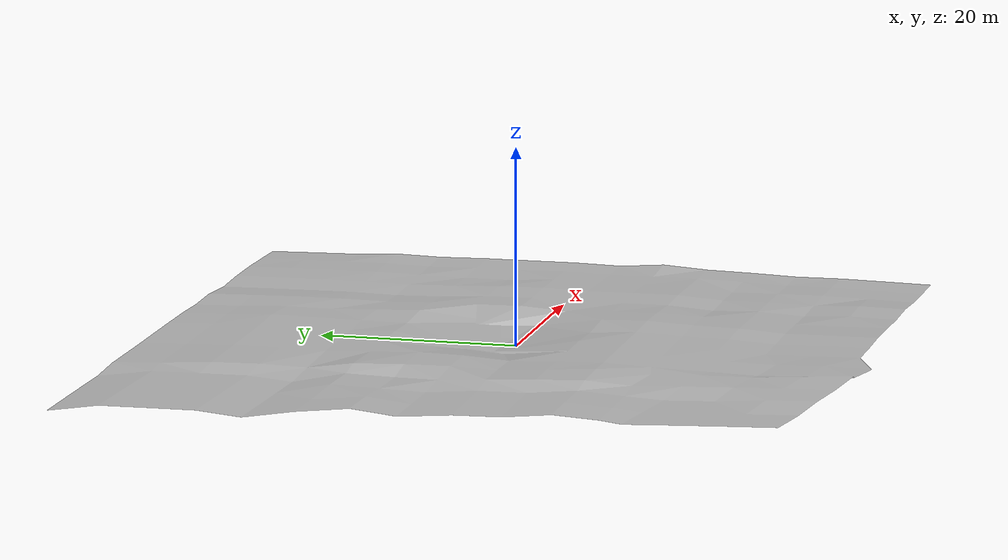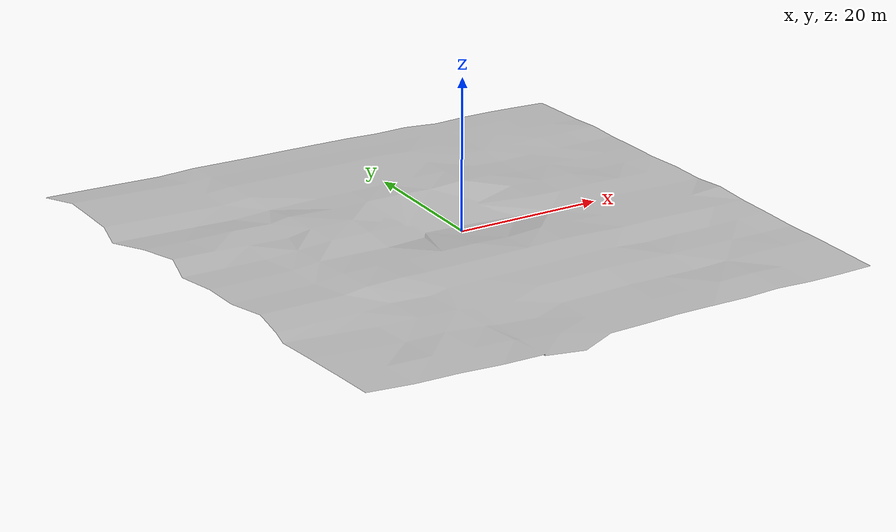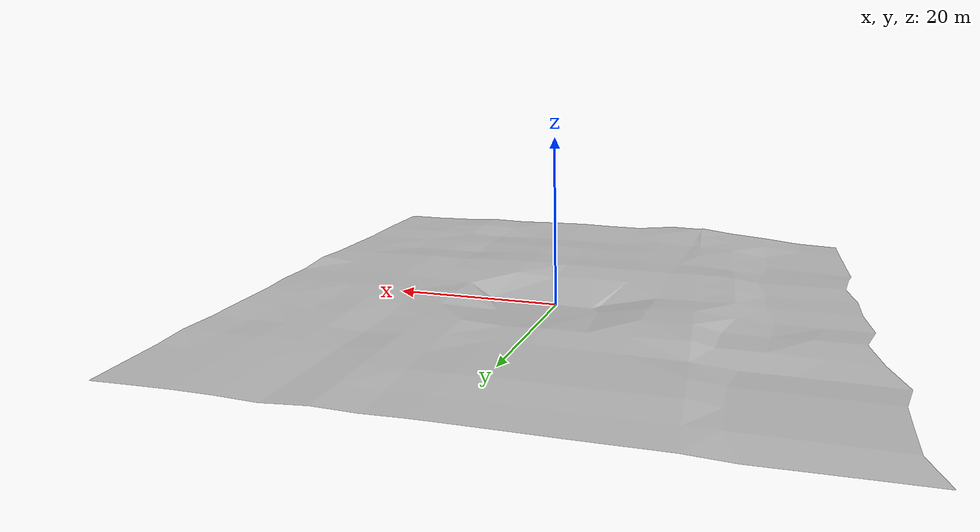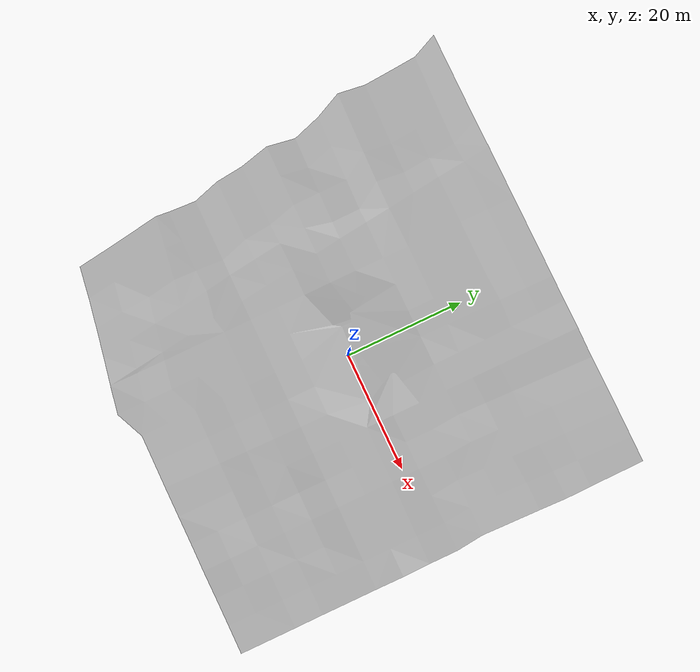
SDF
<?xml version="1.0" ?>
<sdf version="1.5">
  <model name="uneven">
    <pose>0 0 0.75  0 0 0</pose>
    <static>true</static>
    <link name="link">
      <visual name="visual">
         <geometry>
          <mesh>
            <uri>model://uneven/meshes/uneven2.dae</uri>
          </mesh>
	       </geometry>
      </visual>
    </link>
  </model>
</sdf>
